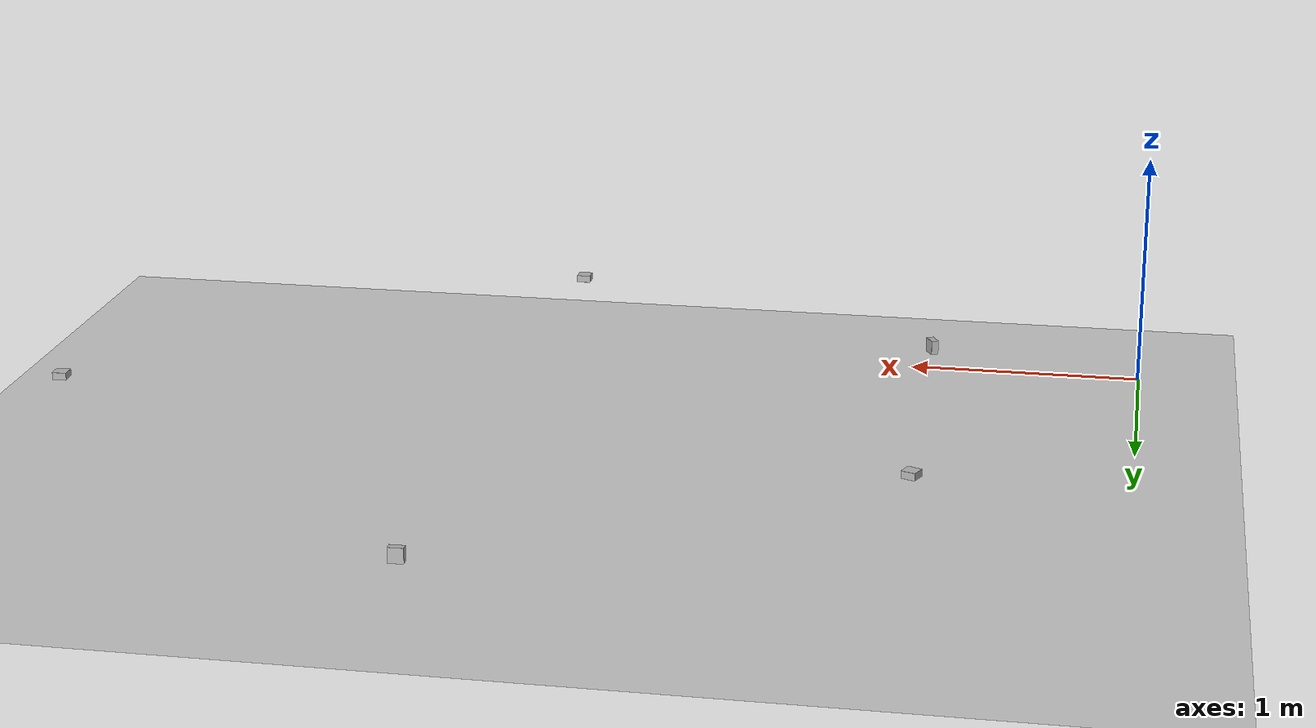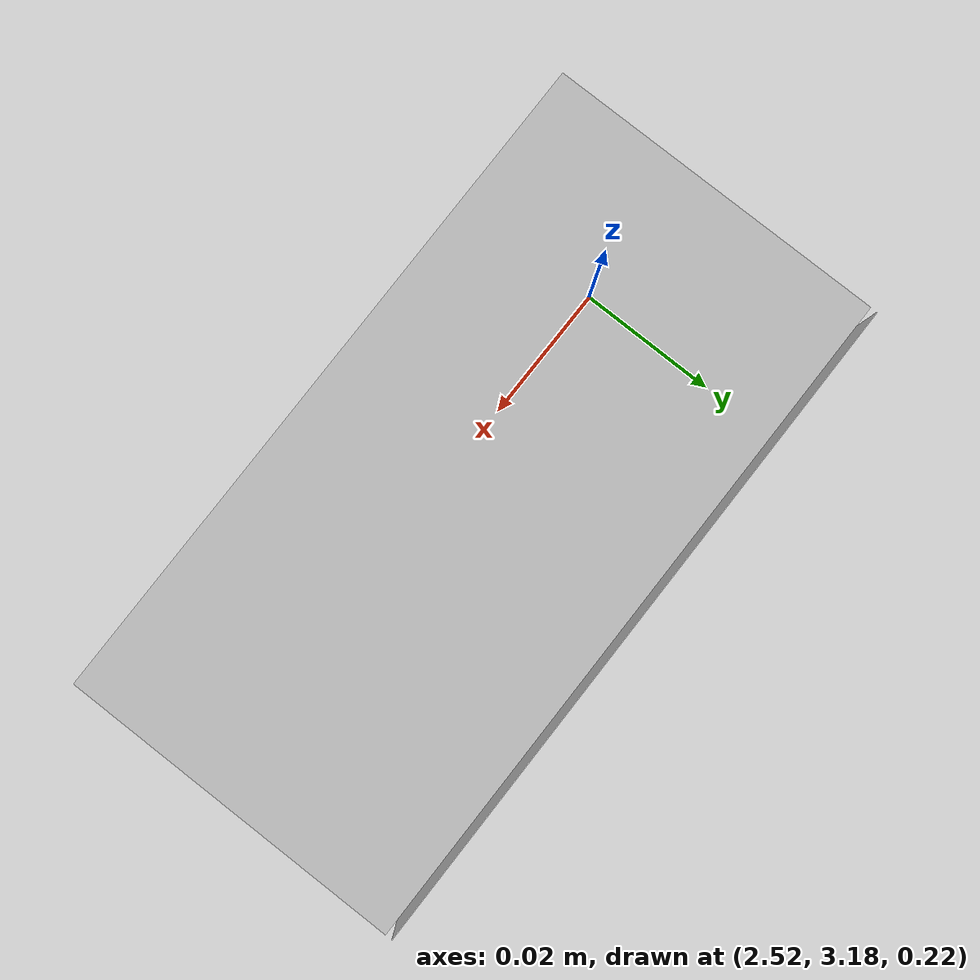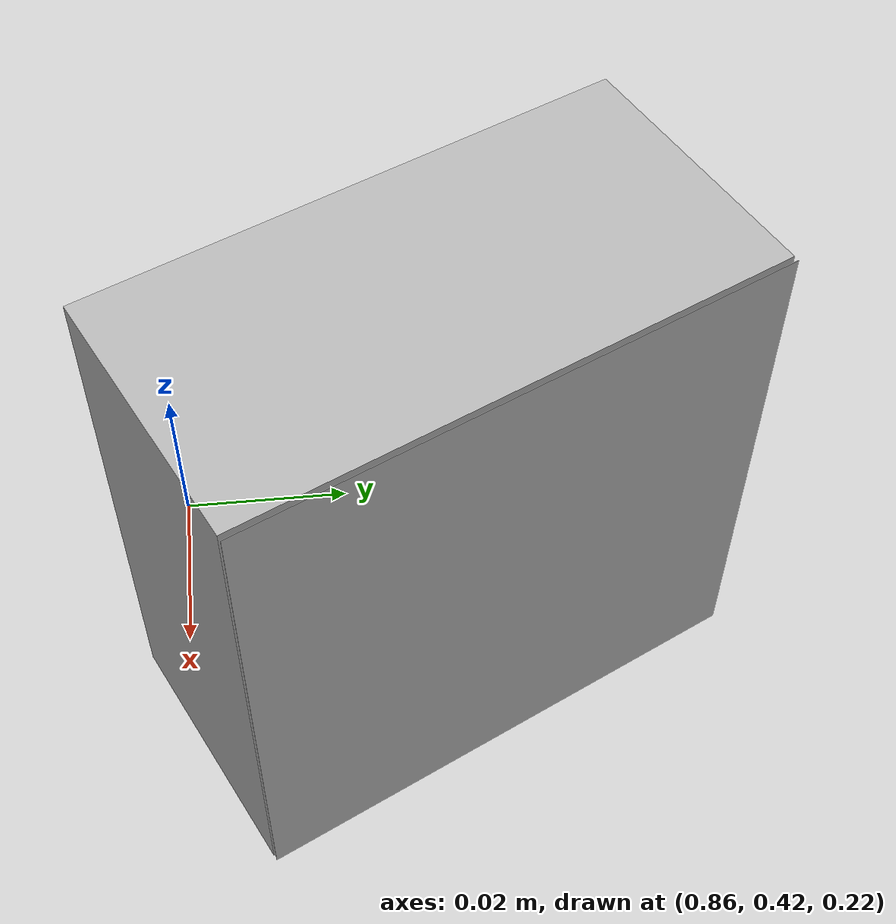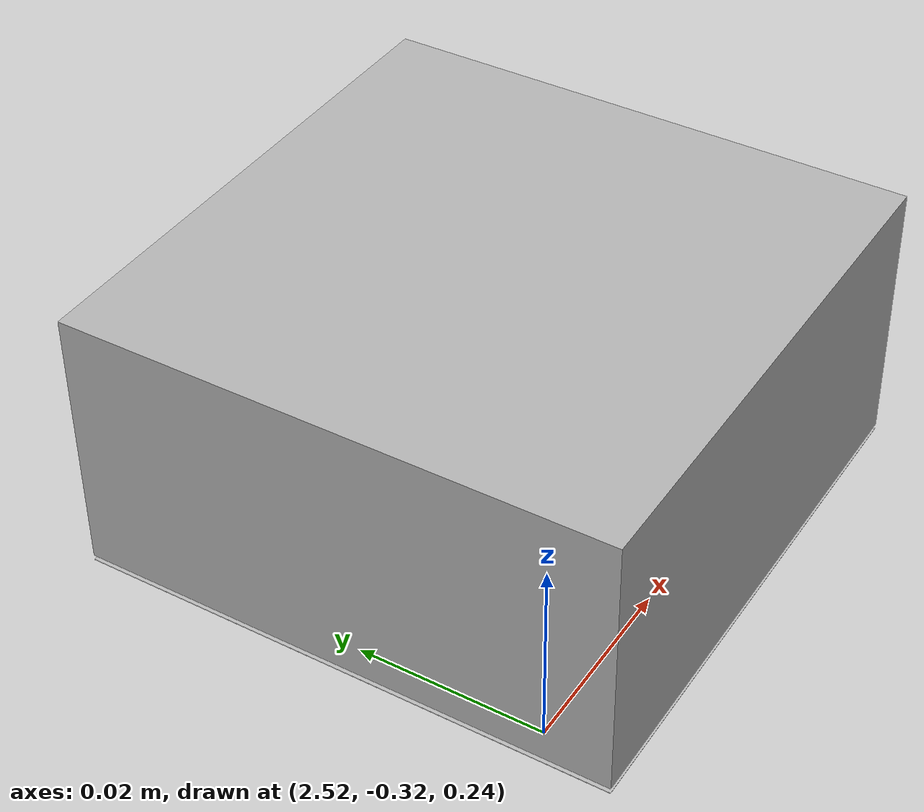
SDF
<sdf version='1.10'>
  <world name='empty'>
    <physics name='1ms' type='ignored'>
      <max_step_size>0.001</max_step_size>
      <real_time_factor>1</real_time_factor>
      <real_time_update_rate>1000</real_time_update_rate>
    </physics>
    <plugin name='gz::sim::systems::Physics' filename='gz-sim-physics-system'/>
    <plugin name='gz::sim::systems::UserCommands' filename='gz-sim-user-commands-system'/>
    <plugin name='gz::sim::systems::SceneBroadcaster' filename='gz-sim-scene-broadcaster-system'/>
    <plugin name='gz::sim::systems::Contact' filename='gz-sim-contact-system'/>
    <plugin name='gz::sim::systems::Sensors' filename='gz-sim-sensors-system'/>
    <plugin name='gz::sim::systems::Imu' filename='gz-sim-imu-system'/>
    <plugin name='gz::sim::systems::NavSat' filename='gz-sim-navsat-system'/>
    <spherical_coordinates>
      <surface_model>EARTH_WGS84</surface_model>
      <world_frame_orientation>ENU</world_frame_orientation>
      <latitude_deg>44.403373000000002</latitude_deg>
      <longitude_deg>8.9481067999999997</longitude_deg>
      <elevation>0</elevation>
      <heading_deg>0</heading_deg>
    </spherical_coordinates>
    <gravity>0 0 -9.8000000000000007</gravity>
    <magnetic_field>5.5644999999999998e-06 2.2875799999999999e-05 -4.2388400000000002e-05</magnetic_field>
    <atmosphere type='adiabatic'/>
    <scene>
      <ambient>0.400000006 0.400000006 0.400000006 1</ambient>
      <background>0.699999988 0.699999988 0.699999988 1</background>
      <shadows>true</shadows>
    </scene>
    <model name='ground_plane'>
      <static>true</static>
      <link name='link'>
        <collision name='collision'>
          <geometry>
            <plane>
              <normal>0 0 1</normal>
              <size>100 100</size>
            </plane>
          </geometry>
          <surface>
            <friction>
              <ode/>
            </friction>
            <bounce/>
            <contact/>
          </surface>
        </collision>
        <visual name='visual'>
          <geometry>
            <plane>
              <normal>0 0 1</normal>
              <size>100 100</size>
            </plane>
          </geometry>
          <material>
            <ambient>0.800000012 0.800000012 0.800000012 1</ambient>
            <diffuse>0.800000012 0.800000012 0.800000012 1</diffuse>
            <specular>0.800000012 0.800000012 0.800000012 1</specular>
          </material>
        </visual>
        <pose>0 0 0 0 0 0</pose>
        <inertial>
          <pose>0 0 0 0 0 0</pose>
          <mass>1</mass>
          <inertia>
            <ixx>1</ixx>
            <ixy>0</ixy>
            <ixz>0</ixz>
            <iyy>1</iyy>
            <iyz>0</iyz>
            <izz>1</izz>
          </inertia>
        </inertial>
        <enable_wind>false</enable_wind>
      </link>
      <pose>0 0 0 0 0 0</pose>
      <self_collide>false</self_collide>
    </model>
    <include>
      <uri>file:///home/ubuntu/gazebo_models/aruco_box</uri>
      <name>aruco_box</name>
      <pose>2.5510902870585674 -0.29631083984035822 0.24999958194673308 3.141590998525531 -3.8930981531813808e-13 -3.1379500778123131</pose>
    </include>
    <include>
      <uri>file:///home/ubuntu/gazebo_models/aruco_box</uri>
      <name>aruco_box_0</name>
      <pose>0.88209846567909511 0.44909273158362589 0.24999988800065173 0.31363768537990122 1.5707962537944136 0.77353189305266257</pose>
    </include>
    <include>
      <uri>file:///home/ubuntu/gazebo_models/aruco_box</uri>
      <name>aruco_box_1</name>
      <pose>0.83557635545730591 2.0431859493255615 0.24999902140451172 -5.629719086594106e-18 4.4534178177335164e-17 -0.388061009191916</pose>
    </include>
    <include>
      <uri>file:///home/ubuntu/gazebo_models/aruco_box</uri>
      <name>aruco_box_2</name>
      <pose>2.5537241077409694 3.1884746979150611 0.24999937608785852 1.5707988052943616 -4.3753889400477419e-13 -3.1321432850206068</pose>
    </include>
    <include>
      <uri>file:///home/ubuntu/gazebo_models/aruco_box</uri>
      <name>aruco_box_3</name>
      <pose>4.4337043762207031 1.4977600574493408 0.24999999991468014 1.1456595028680099e-17 9.4276376414028504e-18 1.1177042943470204e-20</pose>
    </include>
    <light name='sun' type='directional'>
      <pose>0 0 10 0 0 0</pose>
      <cast_shadows>true</cast_shadows>
      <intensity>1</intensity>
      <direction>-0.5 0.10000000000000001 -0.90000000000000002</direction>
      <diffuse>0.800000012 0.800000012 0.800000012 1</diffuse>
      <specular>0.200000003 0.200000003 0.200000003 1</specular>
      <attenuation>
        <range>1000</range>
        <linear>0.01</linear>
        <constant>0.90000000000000002</constant>
        <quadratic>0.001</quadratic>
      </attenuation>
      <spot>
        <inner_angle>0</inner_angle>
        <outer_angle>0</outer_angle>
        <falloff>0</falloff>
      </spot>
    </light>
  </world>
</sdf>

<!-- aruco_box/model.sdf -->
<sdf version="1.6">
  <model name="aruco_box">
    <static>false</static>

    <link name="link">
      <inertial>
        <mass>0.05</mass>
        <inertia>
          <ixx>1e-5</ixx><iyy>1e-5</iyy><izz>1e-5</izz>
          <ixy>0</ixy><ixz>0</ixz><iyz>0</iyz>
        </inertia>
      </inertial>

      <collision name="box_col">
        <geometry>
          <box><size>0.06 0.06 0.03</size></box>
        </geometry>
      </collision>

      <visual name="box_vis">
        <geometry>
          <box><size>0.06 0.06 0.03</size></box>
        </geometry>
        <material>
          <ambient>0.7 0.7 0.7 1</ambient>
          <diffuse>0.7 0.7 0.7 1</diffuse>
        </material>
      </visual>

      <!-- Top marker plane -->
      <visual name="marker_plane">
        <!-- box half height = 0.015, lift slightly to avoid z-fighting -->
        <pose>0 0 0.0156 0 0 0</pose>
        <geometry>
          <plane>
            <normal>0 0 1</normal>
            <size>0.06 0.06</size>
          </plane>
        </geometry>
        <material>
          <script>
            <uri>model://aruco_box/materials/scripts</uri>
            <uri>model://aruco_box/materials/textures</uri>
            <name>ArucoBox/Marker</name>
          </script>
        </material>
      </visual>

    </link>
  </model>
</sdf>
